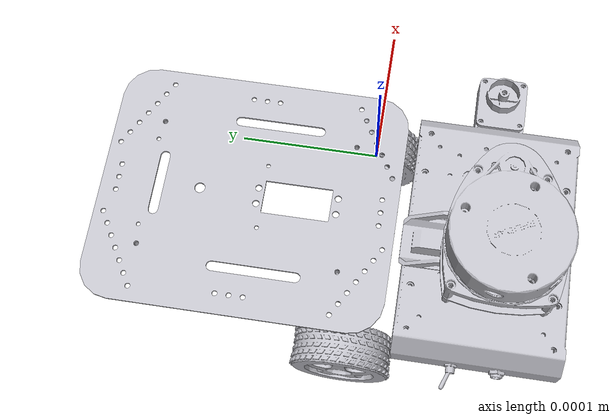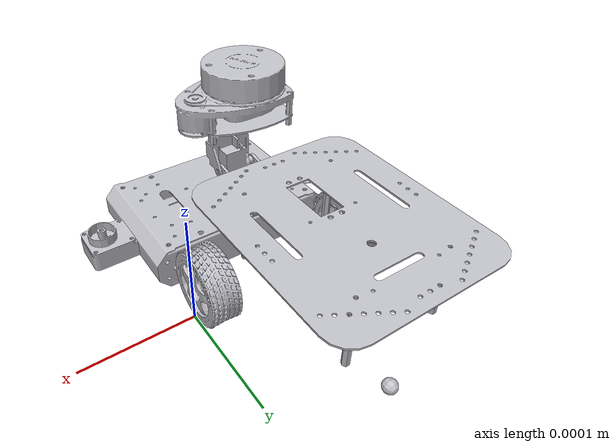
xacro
<?xml version="1.0" ?>
<robot name="PRM_components_urdf" xmlns:xacro="http://www.ros.org/wiki/xacro">

<xacro:include filename="$(find PRM_components_urdf_description)/urdf/materials.xacro" />
<xacro:include filename="$(find PRM_components_urdf_description)/urdf/PRM_components_urdf.trans" />
<xacro:include filename="$(find PRM_components_urdf_description)/urdf/PRM_components_urdf.gazebo" />
<link name="base_link">
  <inertial>
    <origin rpy="0 0 0" xyz="-0.04440645528739345 -0.08397771781293317 0.03211202600509656"/>
    <mass value="0.27584583240478544"/>
    <inertia ixx="0.000392" ixy="1e-06" ixz="-1.1e-05" iyy="0.001046" iyz="-0.0" izz="0.001324"/>
  </inertial>
  <visual>
    <origin rpy="0 0 0" xyz="0 0 0"/>
    <geometry>
      <mesh filename="package://PRM_components_urdf_description/meshes/base_link.stl" scale="0.001 0.001 0.001"/>
    </geometry>
    <material name="silver"/>
  </visual>
  <collision>
    <origin rpy="0 0 0" xyz="0 0 0"/>
    <geometry>
      <mesh filename="package://PRM_components_urdf_description/meshes/base_link.stl" scale="0.001 0.001 0.001"/>
    </geometry>
  </collision>
</link>

<link name="bille_porteuse_1">
  <inertial>
    <origin rpy="0 0 0" xyz="4.4075807900667563e-07 8.81239525796218e-15 -5.026748794122182e-09"/>
    <mass value="0.008419367021437509"/>
    <inertia ixx="0.0" ixy="0.0" ixz="0.0" iyy="0.0" iyz="-0.0" izz="0.0"/>
  </inertial>
  <visual>
    <origin rpy="0 0 0" xyz="0.13815 0.084 -0.005278"/>
    <geometry>
      <mesh filename="package://PRM_components_urdf_description/meshes/bille_porteuse_1.stl" scale="0.001 0.001 0.001"/>
    </geometry>
    <material name="silver"/>
  </visual>
  <collision>
    <origin rpy="0 0 0" xyz="0.13815 0.084 -0.005278"/>
    <geometry>
      <mesh filename="package://PRM_components_urdf_description/meshes/bille_porteuse_1.stl" scale="0.001 0.001 0.001"/>
    </geometry>
  </collision>
</link>

<link name="left_wheel_1">
  <inertial>
    <origin rpy="0 0 0" xyz="-5.2662574511206164e-06 0.016848728056798885 7.5130622022856475e-06"/>
    <mass value="0.05572555972770472"/>
    <inertia ixx="1.9e-05" ixy="0.0" ixz="0.0" iyy="3e-05" iyz="-0.0" izz="1.9e-05"/>
  </inertial>
  <visual>
    <origin rpy="0 0 0" xyz="0.002194 0.029 -0.032408"/>
    <geometry>
      <mesh filename="package://PRM_components_urdf_description/meshes/left_wheel_1.stl" scale="0.001 0.001 0.001"/>
    </geometry>
    <material name="silver"/>
  </visual>
  <collision>
    <origin rpy="0 0 0" xyz="0.002194 0.029 -0.032408"/>
    <geometry>
      <mesh filename="package://PRM_components_urdf_description/meshes/left_wheel_1.stl" scale="0.001 0.001 0.001"/>
    </geometry>
  </collision>
</link>

<link name="right_wheel_3">
  <inertial>
    <origin rpy="0 0 0" xyz="7.067395580518353e-06 -0.016839972582978313 5.538351484139781e-06"/>
    <mass value="0.055725588971055603"/>
    <inertia ixx="1.9e-05" ixy="-0.0" ixz="-0.0" iyy="3e-05" iyz="-0.0" izz="1.9e-05"/>
  </inertial>
  <visual>
    <origin rpy="0 0 0" xyz="0.002194 0.139 -0.032408"/>
    <geometry>
      <mesh filename="package://PRM_components_urdf_description/meshes/right_wheel_3.stl" scale="0.001 0.001 0.001"/>
    </geometry>
    <material name="silver"/>
  </visual>
  <collision>
    <origin rpy="0 0 0" xyz="0.002194 0.139 -0.032408"/>
    <geometry>
      <mesh filename="package://PRM_components_urdf_description/meshes/right_wheel_3.stl" scale="0.001 0.001 0.001"/>
    </geometry>
  </collision>
</link>

<link name="lien_plaque_sup_1">
  <inertial>
    <origin rpy="0 0 0" xyz="-0.06000009548239051 -0.03999999999999146 0.03000032830658448"/>
    <mass value="0.016233798346575297"/>
    <inertia ixx="3.1e-05" ixy="0.0" ixz="0.0" iyy="6.3e-05" iyz="0.0" izz="8.4e-05"/>
  </inertial>
  <visual>
    <origin rpy="0 0 0" xyz="0.008694 0.044 -0.051408"/>
    <geometry>
      <mesh filename="package://PRM_components_urdf_description/meshes/lien_plaque_sup_1.stl" scale="0.001 0.001 0.001"/>
    </geometry>
    <material name="silver"/>
  </visual>
  <collision>
    <origin rpy="0 0 0" xyz="0.008694 0.044 -0.051408"/>
    <geometry>
      <mesh filename="package://PRM_components_urdf_description/meshes/lien_plaque_sup_1.stl" scale="0.001 0.001 0.001"/>
    </geometry>
  </collision>
</link>

<link name="plaque_sup_1">
  <inertial>
    <origin rpy="0 0 0" xyz="-0.06078556821575159 -0.0399999999999901 0.000750328306584766"/>
    <mass value="0.09905330487184344"/>
    <inertia ixx="0.000189" ixy="0.0" ixz="-0.0" iyy="0.000271" iyz="-0.0" izz="0.000459"/>
  </inertial>
  <visual>
    <origin rpy="0 0 0" xyz="0.008694 0.044 -0.111408"/>
    <geometry>
      <mesh filename="package://PRM_components_urdf_description/meshes/plaque_sup_1.stl" scale="0.001 0.001 0.001"/>
    </geometry>
    <material name="silver"/>
  </visual>
  <collision>
    <origin rpy="0 0 0" xyz="0.008694 0.044 -0.111408"/>
    <geometry>
      <mesh filename="package://PRM_components_urdf_description/meshes/plaque_sup_1.stl" scale="0.001 0.001 0.001"/>
    </geometry>
  </collision>
</link>

<link name="laser_1">
  <inertial>
    <origin rpy="0 0 0" xyz="0.040061549613594385 0.027457135055986126 0.02472769102291729"/>
    <mass value="0.07305683031313406"/>
    <inertia ixx="3.2e-05" ixy="-1e-06" ixz="7e-06" iyy="6.2e-05" iyz="0.0" izz="7.2e-05"/>
  </inertial>
  <visual>
    <origin rpy="0 0 0" xyz="0.130239 0.112 -0.112908"/>
    <geometry>
      <mesh filename="package://PRM_components_urdf_description/meshes/laser_1.stl" scale="0.001 0.001 0.001"/>
    </geometry>
    <material name="silver"/>
  </visual>
  <collision>
    <origin rpy="0 0 0" xyz="0.130239 0.112 -0.112908"/>
    <geometry>
      <mesh filename="package://PRM_components_urdf_description/meshes/laser_1.stl" scale="0.001 0.001 0.001"/>
    </geometry>
  </collision>
</link>

<link name="tilt_1">
  <inertial>
    <origin rpy="0 0 0" xyz="0.0037378587094302335 0.012530450621509981 0.008107618754683063"/>
    <mass value="0.0837710951291597"/>
    <inertia ixx="1.2e-05" ixy="0.0" ixz="-1e-06" iyy="9e-06" iyz="-0.0" izz="9e-06"/>
  </inertial>
  <visual>
    <origin rpy="0 0 0" xyz="-0.066257 0.093603 -0.082423"/>
    <geometry>
      <mesh filename="package://PRM_components_urdf_description/meshes/tilt_1.stl" scale="0.001 0.001 0.001"/>
    </geometry>
    <material name="silver"/>
  </visual>
  <collision>
    <origin rpy="0 0 0" xyz="-0.066257 0.093603 -0.082423"/>
    <geometry>
      <mesh filename="package://PRM_components_urdf_description/meshes/tilt_1.stl" scale="0.001 0.001 0.001"/>
    </geometry>
  </collision>
</link>

<link name="camera_1">
  <inertial>
    <origin rpy="0 0 0" xyz="0.000606363709508867 -0.0027798204886418793 3.8531724794926836e-05"/>
    <mass value="0.0010901216866178827"/>
    <inertia ixx="0.0" ixy="-0.0" ixz="0.0" iyy="0.0" iyz="-0.0" izz="0.0"/>
  </inertial>
  <visual>
    <origin rpy="0 0 0" xyz="-0.087487 0.081607 -0.094501"/>
    <geometry>
      <mesh filename="package://PRM_components_urdf_description/meshes/camera_1.stl" scale="0.001 0.001 0.001"/>
    </geometry>
    <material name="silver"/>
  </visual>
  <collision>
    <origin rpy="0 0 0" xyz="-0.087487 0.081607 -0.094501"/>
    <geometry>
      <mesh filename="package://PRM_components_urdf_description/meshes/camera_1.stl" scale="0.001 0.001 0.001"/>
    </geometry>
  </collision>
</link>

<link name="pan_1">
  <inertial>
    <origin rpy="0 0 0" xyz="0.006971063596799235 -0.00019701296470631124 0.01387484558911345"/>
    <mass value="0.10221097927434729"/>
    <inertia ixx="1.4e-05" ixy="0.0" ixz="-3e-06" iyy="1.7e-05" iyz="0.0" izz="1.9e-05"/>
  </inertial>
  <visual>
    <origin rpy="0 0 0" xyz="-0.039106 0.084018 -0.051732"/>
    <geometry>
      <mesh filename="package://PRM_components_urdf_description/meshes/pan_1.stl" scale="0.001 0.001 0.001"/>
    </geometry>
    <material name="silver"/>
  </visual>
  <collision>
    <origin rpy="0 0 0" xyz="-0.039106 0.084018 -0.051732"/>
    <geometry>
      <mesh filename="package://PRM_components_urdf_description/meshes/pan_1.stl" scale="0.001 0.001 0.001"/>
    </geometry>
  </collision>
</link>

<joint name="caster" type="Ball">
  <origin rpy="0 0 0" xyz="-0.13815 -0.084 0.005278"/>
  <parent link="base_link"/>
  <child link="bille_porteuse_1"/>
</joint>

<joint name="rev_left" type="continuous">
  <origin rpy="0 0 0" xyz="-0.002194 -0.029 0.032408"/>
  <parent link="base_link"/>
  <child link="left_wheel_1"/>
  <axis xyz="0.0 0.01 -0.0"/>
</joint>

<joint name="rev_right" type="continuous">
  <origin rpy="0 0 0" xyz="-0.002194 -0.139 0.032408"/>
  <parent link="base_link"/>
  <child link="right_wheel_3"/>
  <axis xyz="-0.0 -0.01 0.0"/>
</joint>

<joint name="rigid_plaque_inf" type="fixed">
  <origin rpy="0 0 0" xyz="-0.008694 -0.044 0.051408"/>
  <parent link="base_link"/>
  <child link="lien_plaque_sup_1"/>
</joint>

<joint name="rigid_plaque_sup" type="fixed">
  <origin rpy="0 0 0" xyz="0.0 0.0 0.06"/>
  <parent link="lien_plaque_sup_1"/>
  <child link="plaque_sup_1"/>
</joint>

<joint name="rplidar_joint" type="fixed">
  <origin rpy="0 0 0" xyz="-0.121545 -0.068 0.0015"/>
  <parent link="plaque_sup_1"/>
  <child link="laser_1"/>
</joint>

<joint name="tilt_joint" type="revolute">
  <origin rpy="0 0 0" xyz="0.027151 -0.009585 0.030691"/>
  <parent link="pan_1"/>
  <child link="tilt_1"/>
  <axis xyz="5.3e-05 -0.01 -9e-06"/>
  <limit effort="100" lower="-1.434661" upper="1.434661" velocity="100"/>
</joint>

<joint name="rigid_camera" type="fixed">
  <origin rpy="0 0 0" xyz="0.02123 0.011996 0.012078"/>
  <parent link="tilt_1"/>
  <child link="camera_1"/>
</joint>

<joint name="pan_joint" type="revolute">
  <origin rpy="0 0 0" xyz="0.039106 -0.084018 0.051732"/>
  <parent link="base_link"/>
  <child link="pan_1"/>
  <axis xyz="0.0 9e-06 -0.01"/>
  <limit effort="100" lower="-1.570796" upper="1.570796" velocity="100"/>
</joint>

</robot>
